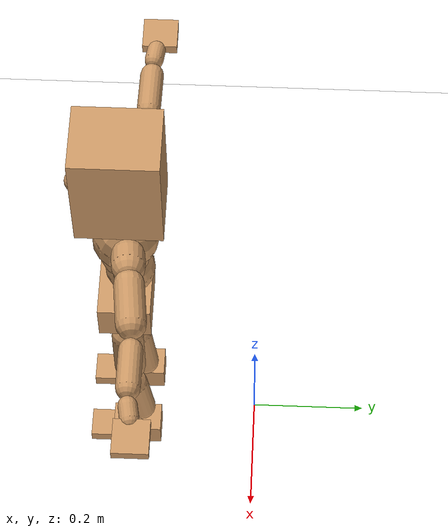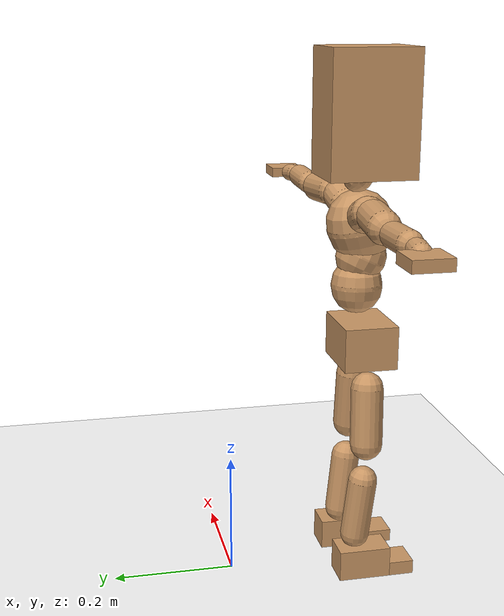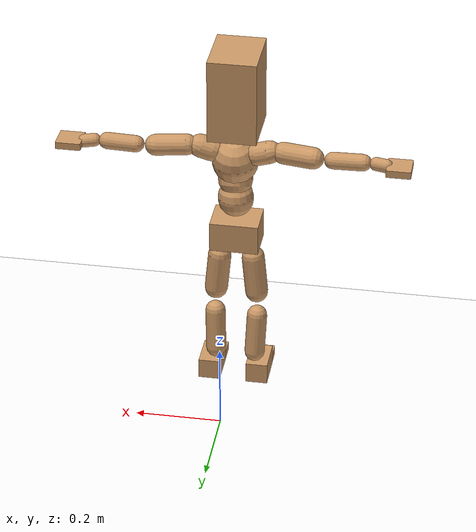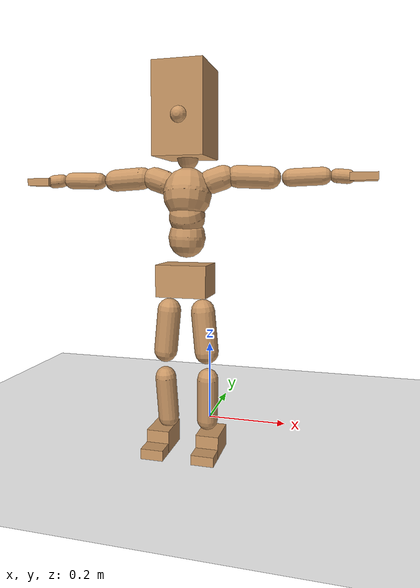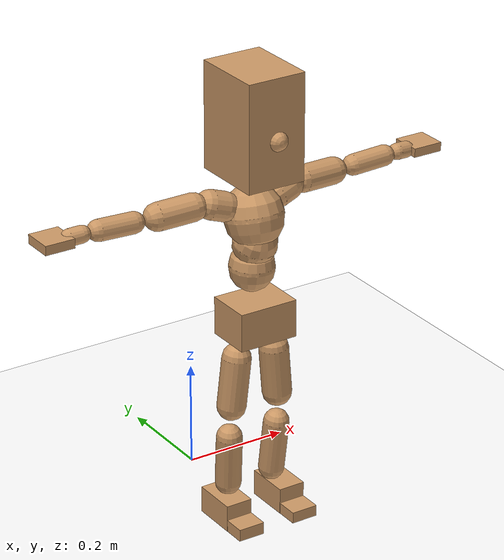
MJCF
<mujoco model="humanoid">
  <option integrator="implicitfast" />

  <visual>
    <global offwidth="1280" offheight="960" />
    <headlight active="1" ambient="0.34 0.34 0.34" diffuse="0.5 0.5 0.5" />
  </visual>

  <default>
    <joint damping="2" stiffness="2" armature="0.01" limited="true" solimplimit="0 .99 .01" />
    <geom condim="1" friction="0.7 0.005 0.0001" solimp=".99 .99 .003" solref="0.015 1" margin="0.001" rgba="0.8 0.6 .4 1" />
    <default class="smplcontact">
      <geom condim="3" friction="1. 0.005 0.0001" solref="0.015 1" solimp="0.98 0.98 0.001" priority="1" />
    </default>
    <default class="stiff_medium">
      <joint stiffness="10" />
    </default>
    <default class="stiff_medium_higher">
      <joint stiffness="50" />
    </default>
    <default class="stiff_high">
      <joint stiffness="100" />
    </default>
  </default>

  <asset>
    <texture type="skybox" builtin="gradient" rgb1="0.99 0.99 0.99" rgb2="0.608 0.828 0.892" width="100" />
    <texture builtin="flat" height="1278" mark="cross" markrgb="1 1 1" name="texgeom" random="0.01" rgb1="0.8 0.6 0.4" rgb2="0.8 0.6 0.4" type="cube" width="127" />
    <texture name="texplane" type="2d" builtin="checker" markrgb="1 1 1" rgb1="0.756 0.772 0.76" rgb2="0.6 0.6 0.6" width="100" height="100" />
    <material name="MatPlane" reflectance="0.5" texture="texplane" texrepeat="1 1" texuniform="true" />
    <material name="geom" texture="texgeom" texuniform="true" />
  </asset>

  <worldbody>
    <light name="tracking_light" pos="0 0 7" dir="0 0 -1" directional="true" cutoff="100" exponent="1" diffuse="1 1 1" specular="0.1 0.1 0.1" mode="trackcom" />
    <camera name="back" pos="0 3 2.4" xyaxes="-1 0 0 0 -1 2" mode="trackcom" />
    <camera name="side" pos="-3 0 2.4" xyaxes="0 -1 0 1 0 2" mode="trackcom" />
    <camera name="front_side" pos="-2.8 -2.8 0.8" xyaxes="0.5 -0.5 0 0.1 0.1 1" mode="trackcom" />
    <geom condim="3" name="floor" pos="0 0 0" rgba="1 1 1 1" size="100 100 .2" type="plane" material="MatPlane" />
    <body name="Pelvis" pos="-0.0018 -0.2233 0.402403" euler="90 0 0">
      <site name="Pelvis" size="0.01" />
      <freejoint name="Pelvis" />
      <geom type="box" pos="0 -0.00602459 -0.0029414" size="0.0571701 0.0359484 0.0443884" quat="1.0000 0.0000 0.0000 0.0000" density="3165.830099" name="Pelvis" />
      <body name="L_Hip" pos="0.0371686 -0.0455081 -0.00363664">
        <joint name="L_Hip_x" type="hinge" pos="0 0 0" axis="1 0 0" stiffness="0.3677748979591837" range="-160.0 22.92" class="stiff_medium" damping="0.37491331306998665" armature="0.00016986234798283648"/>
        <joint name="L_Hip_y" type="hinge" pos="0 0 0" axis="0 1 0" stiffness="0.38561333333333336" range="-70.0 70.0" class="stiff_medium" damping="0.27199011934946754" armature="0.0001918466469617344"/>
        <joint name="L_Hip_z" type="hinge" pos="0 0 0" axis="0 0 1" stiffness="0.38127510204081627" range="-28.65 90.0" class="stiff_medium" damping="0.2543517976522173" armature="0.00016968020367086225"/>
        <geom type="capsule" density="2040.816327" fromto="0.00285122 -0.0309673 -0.000371632 0.0113157 -0.123952 -0.00148646" size="0.0272814" name="L_Hip" />
        <body name="L_Knee" pos="0.0141669 -0.15492 -0.00185809">
          <joint name="L_Knee_x" type="hinge" pos="0 0 0" axis="1 0 0" range="-5.16 171.89" damping="0.22297770555726118" armature="0.0001962826443756733" stiffness="0.07915730612244898"/>
          <joint name="L_Knee_y" type="hinge" pos="0 0 0" axis="0 1 0" range="-4.58 6.88" damping="0.2358951287367411" armature="0.00024222787645962438" stiffness="0.07178998214285714"/>
          <joint name="L_Knee_z" type="hinge" pos="0 0 0" axis="0 0 1" range="-6.88 4.58" damping="0.23016580390690033" armature="0.00019511860256288564" stiffness="0.08484630724637682"/>
          <geom type="capsule" density="1234.567901" fromto="-0.00111382 -0.0328671 -0.00359021 -0.0044996 -0.131468 -0.0144495" size="0.0239988" name="L_Knee" />
          <body name="L_Ankle" pos="-0.00561341 -0.164335 -0.0180397">
            <joint name="L_Ankle_x" type="hinge" pos="0 0 0" axis="1 0 0" range="-45.84 45.84" class="stiff_medium" damping="0.3082937562143534" armature="0.0003672281061202325" stiffness="0.7189373469387755"/>
            <joint name="L_Ankle_y" type="hinge" pos="0 0 0" axis="0 1 0" range="-74.48 22.92" class="stiff_medium" damping="0.15577719327276413" armature="0.00036653591128919273" stiffness="0.735611836734694"/>
            <joint name="L_Ankle_z" type="hinge" pos="0 0 0" axis="0 0 1" range="-4.58 4.58" class="stiff_medium" damping="0.33580714543916057" armature="0.00040933702998049564" stiffness="0.7652376530612246"/>
            <geom type="box" pos="0.0124608 -0.0127817 0.0121097" size="0.0258308 0.0248147 0.042534" quat="1.0000 0.0000 0.0000 0.0000" density="449.071558" name="L_Ankle" class="smplcontact" />
            <body name="L_Toe" pos="0.0141187 -0.0298418 0.0596977">
              <joint name="L_Toe_x" type="hinge" pos="0 0 0" axis="1 0 0" range="-91.67 22.92" armature="0.00036396280409048653" damping="0.10217521170199326" stiffness="0.14341814285714286"/>
              <joint name="L_Toe_y" type="hinge" pos="0 0 0" axis="0 1 0" range="-4.58 4.58" armature="0.0003767336280226816" damping="0.10435413440400794" stiffness="0.14452897959183675"/>
              <joint name="L_Toe_z" type="hinge" pos="0 0 0" axis="0 0 1" range="-4.58 4.58" armature="0.0004093375005717851" damping="0.11194801822723745" stiffness="0.153081"/>
              <geom type="box" pos="-0.0016044 0.0029414 0.0124099" size="0.0255634 0.010696 0.0248198" quat="1.0000 0.0000 0.0000 0.0000" density="423.206892" name="L_Toe" class="smplcontact" />
            </body>
          </body>
        </body>
      </body>
      <body name="R_Hip" pos="-0.036206 -0.04506 -0.00229964">
        <joint name="R_Hip_x" type="hinge" pos="0 0 0" axis="1 0 0" stiffness="0.3677748979591837" range="-160.0 22.92" class="stiff_medium" damping="0.37491331306998665" armature="0.00016986234798283648"/>
        <joint name="R_Hip_y" type="hinge" pos="0 0 0" axis="0 1 0" stiffness="0.38561333333333336" range="-70.0 70.0" class="stiff_medium" damping="0.27199011934946754" armature="0.0001918466469617344"/>
        <joint name="R_Hip_z" type="hinge" pos="0 0 0" axis="0 0 1" stiffness="0.38127510204081627" range="-90.0 28.65" class="stiff_medium" damping="0.2543517976522173" armature="0.00016968020367086225"/>
        <geom type="capsule" density="2040.816327" fromto="-0.00318146 -0.0315866 -0.000744262 -0.0126369 -0.126388 -0.00293263" size="0.0268822" name="R_Hip" />
        <body name="R_Knee" pos="-0.0158183 -0.157975 -0.00367689">
          <joint name="R_Knee_x" type="hinge" pos="0 0 0" axis="1 0 0" range="-5.16 171.89" damping="0.22297770555726118" armature="0.0001962826443756733" stiffness="0.07915730612244898"/>
          <joint name="R_Knee_y" type="hinge" pos="0 0 0" axis="0 1 0" range="-6.88 4.58" damping="0.2358951287367411" armature="0.00024222787645962438" stiffness="0.07178998214285714"/>
          <joint name="R_Knee_z" type="hinge" pos="0 0 0" axis="0 0 1" range="-4.58 6.88" damping="0.23016580390690033" armature="0.00019511860256288564" stiffness="0.08484630724637682"/>
          <geom type="capsule" density="1234.567901" fromto="0.00132328 -0.0329078 -0.00351156 0.00520454 -0.131591 -0.0139579" size="0.0239988" name="R_Knee" />
          <body name="R_Ankle" pos="0.00652781 -0.164499 -0.0174695">
            <joint name="R_Ankle_x" type="hinge" pos="0 0 0" axis="1 0 0" range="-45.84 45.84" class="stiff_medium" damping="0.3082937562143534" armature="0.0003672281061202325" stiffness="0.7189373469387755"/>
            <joint name="R_Ankle_y" type="hinge" pos="0 0 0" axis="0 1 0" range="-22.92 74.48" class="stiff_medium" damping="0.15577719327276413" armature="0.00036653591128919273" stiffness="0.735611836734694"/>
            <joint name="R_Ankle_z" type="hinge" pos="0 0 0" axis="0 0 1" range="-4.58 4.58" class="stiff_medium" damping="0.33580714543916057" armature="0.00040933702998049564" stiffness="0.7652376530612246"/>
            <geom type="box" pos="-0.0113378 -0.00930552 0.0128102" size="0.0258308 0.0255634 0.0432846" quat="1.0000 0.0000 0.0000 0.0000" density="434.700981" name="R_Ankle" class="smplcontact" />
            <body name="R_Toe" pos="-0.0135839 -0.0257239 0.0616993">
              <joint name="R_Toe_x" type="hinge" pos="0 0 0" axis="1 0 0" range="-91.67 22.92" armature="0.00036396280409048653" damping="0.10217521170199326" stiffness="0.14341814285714286"/>
              <joint name="R_Toe_y" type="hinge" pos="0 0 0" axis="0 1 0" range="-4.58 4.58" armature="0.0003767336280226816" damping="0.10435413440400794" stiffness="0.14452897959183675"/>
              <joint name="R_Toe_z" type="hinge" pos="0 0 0" axis="0 0 1" range="-4.58 4.58" armature="0.0004093375005717851" damping="0.11194801822723745" stiffness="0.153081"/>
              <geom type="box" pos="0.00224616 0.0024066 0.0113591" size="0.0256169 0.0115517 0.0246697" quat="1.0000 0.0000 0.0000 0.0000" density="407.384095" name="R_Toe" class="smplcontact" />
            </body>
          </body>
        </body>
      </body>
      <body name="Torso" pos="-0.001337 0.0542711 -0.0142792">
        <joint name="Torso_x" type="hinge" pos="0 0 0" axis="1 0 0" range="-25.78 57.3" class="stiff_medium" damping="2.1825614929527895" armature="0.0011955666764354703" stiffness="1.7708291304347825"/>
        <joint name="Torso_y" type="hinge" pos="0 0 0" axis="0 1 0" range="-57.3 57.3" class="stiff_high" damping="1.5052226665062327" armature="0.000309461059683733" stiffness="18.303557142857144"/>
        <joint name="Torso_z" type="hinge" pos="0 0 0" axis="0 0 1" range="-34.38 34.38" class="stiff_high" damping="2.4335813002643425" armature="0.0008873872509426525" stiffness="16.684705405405406"/>
        <geom type="capsule" density="2040.816327" fromto="0.00127129 0.0306915 0.000254258 0.00152369 0.0375063 0.000304738" size="0.0417029" name="Torso" />
        <body name="Spine" pos="0.00279485 0.0682482 0.000558969">
          <joint name="Spine_x" type="hinge" pos="0 0 0" axis="1 0 0" stiffness="1.9280622916666668" range="-25.78 57.3" class="stiff_medium" damping="2.6413545967464116" armature="0.001608236215167443"/>
          <joint name="Spine_y" type="hinge" pos="0 0 0" axis="0 1 0" stiffness="2.301758620689655" range="-57.3 57.3" class="stiff_high" damping="0.6740117984523157" armature="0.00030838641998656447"/>
          <joint name="Spine_z" type="hinge" pos="0 0 0" axis="0 0 1" stiffness="4.1059620512820505" range="-34.38 34.38" class="stiff_high" damping="1.6197521615010917" armature="0.0008874618826367728"/>
          <geom type="capsule" density="2040.816327" fromto="0.000362845 0.0120182 0.00574632 0.000413325 0.0146936 0.0070588" size="0.0409436" name="Spine" />
          <body name="Chest" pos="0.000776169 0.0267118 0.0128051">
            <joint name="Chest_x" type="hinge" pos="0 0 0" axis="1 0 0" stiffness="2.2754483333333333" range="-25.78 57.3" class="stiff_medium" damping="3.077686117594897" armature="0.001850116831859773"/>
            <joint name="Chest_y" type="hinge" pos="0 0 0" axis="0 1 0" stiffness="2.292672222222222" range="-57.3 57.3" class="stiff_high" damping="0.6719934326781651" armature="0.00030775712369718176"/>
            <joint name="Chest_z" type="hinge" pos="0 0 0" axis="0 0 1" stiffness="4.87682972972973" range="-34.38 34.38" class="stiff_high" damping="1.734495742448778" armature="0.0008567939417671608"/>
            <geom type="capsule" density="2040.816327" fromto="-0.000471151 0.0344301 -0.00872195 -0.000521631 0.0420526 -0.0106907" size="0.0543385" name="Chest" />
            <body name="Neck" pos="-0.00146606 0.108088 -0.0212218">
              <joint name="Neck_x" type="hinge" pos="0 0 0" axis="1 0 0" range="-28.65 57.3" class="stiff_medium_higher" damping="4.1299475131038585" armature="0.004023314113025205" stiffness="21.197035555555555"/>
              <joint name="Neck_y" type="hinge" pos="0 0 0" axis="0 1 0" range="-40.11 40.11" class="stiff_medium_higher" damping="4.167915015262487" armature="0.004459552574933254" stiffness="19.476747142857146"/>
              <joint name="Neck_z" type="hinge" pos="0 0 0" axis="0 0 1" range="-40.11 40.11" class="stiff_medium_higher" damping="4.727445548644317" armature="0.004140774710220232" stiffness="26.986183720930228"/>
              <geom type="capsule" density="1000" fromto="0.000499121 0.00650466 0.00515493 0.00205036 0.0260203 0.0205673" size="0.023435" name="Neck" />
              <body name="Head" pos="0.00260336 0.0325265 0.0256697">
                <joint name="Head_x" type="hinge" pos="0 0 0" axis="1 0 0" range="-28.65 57.3" class="stiff_medium_higher" damping="1.2263755231364017" armature="0.00575771691304177" stiffness="32.651764285714286"/>
                <joint name="Head_y" type="hinge" pos="0 0 0" axis="0 1 0" range="-40.11 40.11" class="stiff_medium_higher" damping="1.321652214058358" armature="0.006499901111254678" stiffness="33.5921375"/>
                <joint name="Head_z" type="hinge" pos="0 0 0" axis="0 0 1" range="-40.11 40.11" class="stiff_medium_higher" damping="1.2242626152853198" armature="0.005712248576418656" stiffness="32.79835714285714"/>
                <geom type="box" pos="-0.00390894 0.0758879 -0.0107961" size="0.0564004 0.099971 0.0707332" quat="1.0000 0.0000 0.0000 0.0000" density="1018.069894" name="Head" />
                <geom type="capsule" name="nose" size="0.018614 0.009307" pos="0 0.060641 0.046535" quat="1 0 0 0" mass="0" contype="0" conaffinity="0" />
              </body>
            </body>
            <body name="L_Thorax" pos="0.0427635 0.0614285 -0.0173122">
              <joint name="L_Thorax_x" type="hinge" pos="0 0 0" axis="1 0 0" range="-10.89 4.58" class="stiff_medium_higher" damping="0.7406219306554" armature="0.0002734892394056669" stiffness="2.5070494791666667"/>
              <joint name="L_Thorax_y" type="hinge" pos="0 0 0" axis="0 1 0" range="-28.65 17.19" class="stiff_medium_higher" damping="0.7053723687170143" armature="0.00023680995229915966" stiffness="2.6263158163265308"/>
              <joint name="L_Thorax_z" type="hinge" pos="0 0 0" axis="0 0 1" range="-31.51 40.11" class="stiff_medium_higher" damping="0.7032905709651358" armature="0.00023694498502748918" stiffness="2.609348469387755"/>
              <geom type="capsule" density="1000" fromto="0.00893609 0.00299506 -0.000885006 0.0357447 0.0119804 -0.00348731" size="0.0274828" name="L_Thorax" />
              <body name="L_Shoulder" pos="0.0446808 0.0149754 -0.00437231">
                <joint name="L_Shoulder_x" type="hinge" pos="0 0 0" axis="1 0 0" range="-97.4 97.4" class="stiff_medium" damping="0.21061709347312874" armature="0.0002462560519030261" stiffness="0.5003775510204083"/>
                <joint name="L_Shoulder_y" type="hinge" pos="0 0 0" axis="0 1 0" range="-108.86 80.21" class="stiff_medium" damping="0.2019473201717738" armature="0.00022971732591280805" stiffness="0.4931510204081632"/>
                <joint name="L_Shoulder_z" type="hinge" pos="0 0 0" axis="0 0 1" range="-97.4 85.94" class="stiff_medium" damping="0.20200603231333833" armature="0.00022962655848656437" stiffness="0.49363285714285715"/>
                <geom type="capsule" density="1000" fromto="0.0232874 -0.00116889 -0.00246795 0.0931949 -0.00457901 -0.0098715" size="0.0249194" name="L_Shoulder" />
                <body name="L_Elbow" pos="0.116482 -0.0057479 -0.0123395">
                  <joint name="L_Elbow_x" type="hinge" pos="0 0 0" axis="1 0 0" range="-17.19 4.58" damping="0.18679544931848754" armature="0.0002710976807905685" stiffness="0.10296669387755103"/>
                  <joint name="L_Elbow_y" type="hinge" pos="0 0 0" axis="0 1 0" range="-180.0 17.19" damping="0.17696681040017315" armature="0.0002433015331233604" stiffness="0.10297428571428573"/>
                  <joint name="L_Elbow_z" type="hinge" pos="0 0 0" axis="0 0 1" range="-100.84 4.58" damping="0.17701921830982972" armature="0.00024288520428848427" stiffness="0.10321189795918367"/>
                  <geom type="capsule" density="1000" fromto="0.0223453 0.00080774 -8.86404e-05 0.0894708 0.00323072 -0.00040273" size="0.019521" name="L_Elbow" />
                  <body name="L_Wrist" pos="0.111816 0.00403846 -0.000539571">
                    <joint name="L_Wrist_x" type="hinge" pos="0 0 0" axis="1 0 0" range="-180.0 22.92" armature="0.00032675344668133563" damping="0.08918573790113651" stiffness="0.12171403126356925"/>
                    <joint name="L_Wrist_y" type="hinge" pos="0 0 0" axis="0 1 0" range="-17.19 17.19" armature="0.00029750232538697344" damping="0.08417704912444428" stiffness="0.11908773469387755"/>
                    <joint name="L_Wrist_z" type="hinge" pos="0 0 0" axis="0 0 1" range="-22.92 22.92" armature="0.0002931730628109191" damping="0.08389537695384801" stiffness="0.12003889795918368"/>
                    <geom type="capsule" density="1000" fromto="0.00753826 -0.00071682 -0.00134612 0.0301527 -0.00291545 -0.00538442" size="0.0153276" name="L_Wrist" class="smplcontact" />
                    <body name="L_Hand" pos="0.0376913 -0.0036805 -0.00668238">
                      <joint name="L_Hand_x" type="hinge" pos="0 0 0" axis="1 0 0" range="-17.19 17.19" armature="0.00040729359764087633" damping="0.10808581049699166" stiffness="0.14341672074468087"/>
                      <joint name="L_Hand_y" type="hinge" pos="0 0 0" axis="0 1 0" range="-51.57 51.57" armature="0.0003656682910762087" damping="0.10197801309235983" stiffness="0.14219875510204083"/>
                      <joint name="L_Hand_z" type="hinge" pos="0 0 0" axis="0 0 1" range="-91.67 91.67" armature="0.00035439672076222506" damping="0.10026866585532955" stiffness="0.14184393877551021"/>
                      <geom type="box" pos="0.0245465 0.0005348 -0.00310184" size="0.0291272 0.00844984 0.0287722" quat="1.0000 0.0000 0.0000 0.0000" density="400.552564" name="L_Hand" class="smplcontact" />
                    </body>
                  </body>
                </body>
              </body>
            </body>
            <body name="R_Thorax" pos="-0.04433 0.0598795 -0.0197587">
              <joint name="R_Thorax_x" type="hinge" pos="0 0 0" axis="1 0 0" range="-10.89 4.58" class="stiff_medium_higher" damping="0.7406219306554" armature="0.0002734892394056669" stiffness="2.5070494791666667"/>
              <joint name="R_Thorax_y" type="hinge" pos="0 0 0" axis="0 1 0" range="-17.19 28.65" class="stiff_medium_higher" damping="0.7053723687170143" armature="0.00023680995229915966" stiffness="2.6263158163265308"/>
              <joint name="R_Thorax_z" type="hinge" pos="0 0 0" axis="0 0 1" range="-40.11 31.51" class="stiff_medium_higher" damping="0.7032905709651358" armature="0.00023694498502748918" stiffness="2.609348469387755"/>
              <geom type="capsule" density="1000" fromto="-0.0094273 0.00319153 -0.000882593 -0.0377089 0.012766 -0.00358309" size="0.0269552" name="R_Thorax" />
              <body name="R_Shoulder" pos="-0.0471351 0.0160099 -0.00446558">
                <joint name="R_Shoulder_x" type="hinge" pos="0 0 0" axis="1 0 0" range="-97.4 97.4" class="stiff_medium" damping="0.21061709347312874" armature="0.0002462560519030261" stiffness="0.5003775510204083"/>
                <joint name="R_Shoulder_y" type="hinge" pos="0 0 0" axis="0 1 0" range="-80.21 108.86" class="stiff_medium" damping="0.2019473201717738" armature="0.00022971732591280805" stiffness="0.4931510204081632"/>
                <joint name="R_Shoulder_z" type="hinge" pos="0 0 0" axis="0 0 1" range="-85.94 97.4" class="stiff_medium" damping="0.20200603231333833" armature="0.00022962655848656437" stiffness="0.49363285714285715"/>
                <geom type="capsule" density="1000" fromto="-0.0227489 -0.00121271 -0.00193069 -0.0910859 -0.00480231 -0.00767405" size="0.0255942" name="R_Shoulder" />
                <body name="R_Elbow" pos="-0.113835 -0.00596682 -0.00960476">
                  <joint name="R_Elbow_x" type="hinge" pos="0 0 0" axis="1 0 0" range="-17.19 4.58" damping="0.18679544931848754" armature="0.0002710976807905685" stiffness="0.10296669387755103"/>
                  <joint name="R_Elbow_y" type="hinge" pos="0 0 0" axis="0 1 0" range="-17.19 180.0" damping="0.17696681040017315" armature="0.0002433015331233604" stiffness="0.10297428571428573"/>
                  <joint name="R_Elbow_z" type="hinge" pos="0 0 0" axis="0 0 1" range="-4.58 100.84" damping="0.17701921830982972" armature="0.00024288520428848427" stiffness="0.10321189795918367"/>
                  <geom type="capsule" density="1000" fromto="-0.0229285 0.000720071 -0.000493521 -0.0916245 0.00278409 -0.00197423" size="0.0196656" name="R_Elbow" />
                  <body name="R_Wrist" pos="-0.114553 0.00350416 -0.00251595">
                    <joint name="R_Wrist_x" type="hinge" pos="0 0 0" axis="1 0 0" range="-180.0 22.92" armature="0.00032675344668133563" damping="0.08918573790113651" stiffness="0.12171403126356925"/>
                    <joint name="R_Wrist_y" type="hinge" pos="0 0 0" axis="0 1 0" range="-17.19 17.19" armature="0.00029750232538697344" damping="0.08417704912444428" stiffness="0.11908773469387755"/>
                    <joint name="R_Wrist_z" type="hinge" pos="0 0 0" axis="0 0 1" range="-22.92 22.92" armature="0.0002931730628109191" damping="0.08389537695384801" stiffness="0.12003889795918368"/>
                    <geom type="capsule" density="1000" fromto="-0.00758295 -0.000537405 -0.000943506 -0.0303769 -0.0021976 -0.00372545" size="0.0157132" name="R_Wrist" class="smplcontact" />
                    <body name="R_Hand" pos="-0.0379603 -0.00273503 -0.0046208">
                      <joint name="R_Hand_x" type="hinge" pos="0 0 0" axis="1 0 0" range="-17.19 17.19" armature="0.00040729359764087633" damping="0.10808581049699166" stiffness="0.14341672074468087"/>
                      <joint name="R_Hand_y" type="hinge" pos="0 0 0" axis="0 1 0" range="-51.57 51.57" armature="0.0003656682910762087" damping="0.10197801309235983" stiffness="0.14219875510204083"/>
                      <joint name="R_Hand_z" type="hinge" pos="0 0 0" axis="0 0 1" range="-91.67 91.67" armature="0.00035439672076222506" damping="0.10026866585532955" stiffness="0.14184393877551021"/>
                      <geom type="box" pos="-0.023003 -0.00048132 -0.00422492" size="0.0283305 0.00877072 0.0292001" quat="1.0000 0.0000 0.0000 0.0000" density="403.679611" name="R_Hand" class="smplcontact" />
                    </body>
                  </body>
                </body>
              </body>
            </body>
          </body>
        </body>
      </body>
    </body>
  </worldbody>
  <actuator>
    <general name="L_Hip_x" joint="L_Hip_x" biastype="affine" gainprm="10.567278500399848" biasprm="-7.919104181253068 -6.619948163265306 -0.04998844174266489" ctrllimited="true" ctrlrange="-1 1" forcerange="-13.239896326530612 13.239896326530612" />
    <general name="L_Hip_y" joint="L_Hip_y" biastype="affine" gainprm="8.480080105883905" biasprm="0.0 -6.941040000000001 -0.05439802386989351" ctrllimited="true" ctrlrange="-1 1" forcerange="-13.882080000000002 13.882080000000002" />
    <general name="L_Hip_z" joint="L_Hip_z" biastype="affine" gainprm="7.106014110887915" biasprm="3.67428542522523 -6.862951836734694 -0.050870359530443464" ctrllimited="true" ctrlrange="-1 1" forcerange="-13.725903673469388 13.725903673469388" />
    <general name="L_Knee_x" joint="L_Knee_x" biastype="affine" gainprm="11.007199004249204" biasprm="10.365604574857214 -7.124157551020408 -0.055744426389315295" ctrllimited="true" ctrlrange="-1 1" forcerange="-14.248315102040817 14.248315102040817" />
    <general name="L_Knee_y" joint="L_Knee_y" biastype="affine" gainprm="0.6461574326363461" biasprm="0.1296825562882719 -6.461098392857143 -0.058973782184185274" ctrllimited="true" ctrlrange="-1 1" forcerange="-12.922196785714286 12.922196785714286" />
    <general name="L_Knee_z" joint="L_Knee_z" biastype="affine" gainprm="0.7636730142918451" biasprm="-0.1532677079294279 -7.6361676521739135 -0.057541450976725084" ctrllimited="true" ctrlrange="-1 1" forcerange="-15.272335304347827 15.272335304347827" />
    <general name="L_Ankle_x" joint="L_Ankle_x" biastype="affine" gainprm="5.176730195028372" biasprm="0.0 -6.47043612244898 -0.10276458540478448" ctrllimited="true" ctrlrange="-1 1" forcerange="-12.94087224489796 12.94087224489796" />
    <general name="L_Ankle_y" joint="L_Ankle_y" biastype="affine" gainprm="5.627267327206861" biasprm="-2.9788696446692584 -6.6205065306122455 -0.10385146218184275" ctrllimited="true" ctrlrange="-1 1" forcerange="-13.241013061224491 13.241013061224491" />
    <general name="L_Ankle_z" joint="L_Ankle_z" biastype="affine" gainprm="0.5505308825056032" biasprm="0.0 -6.8871388775510205 -0.11193571514638687" ctrllimited="true" ctrlrange="-1 1" forcerange="-13.774277755102041 13.774277755102041" />
    <general name="L_Toe_x" joint="L_Toe_x" biastype="affine" gainprm="5.1629828991585" biasprm="-3.0976095149415035 -5.163053142857143 -0.04087008468079731" ctrllimited="true" ctrlrange="-1 1" forcerange="-10.326106285714285 10.326106285714285" />
    <general name="L_Toe_y" joint="L_Toe_y" biastype="affine" gainprm="0.4159108813531538" biasprm="0.0 -5.203043265306123 -0.04174165376160318" ctrllimited="true" ctrlrange="-1 1" forcerange="-10.406086530612246 10.406086530612246" />
    <general name="L_Toe_z" joint="L_Toe_z" biastype="affine" gainprm="0.44052102082382805" biasprm="0.0 -5.510916 -0.04477920729089498" ctrllimited="true" ctrlrange="-1 1" forcerange="-11.021832 11.021832" />
    <general name="R_Hip_x" joint="R_Hip_x" biastype="affine" gainprm="10.567278500399848" biasprm="-7.919104181253068 -6.619948163265306 -0.04998844174266489" ctrllimited="true" ctrlrange="-1 1" forcerange="-13.239896326530612 13.239896326530612" />
    <general name="R_Hip_y" joint="R_Hip_y" biastype="affine" gainprm="8.480080105883905" biasprm="0.0 -6.941040000000001 -0.05439802386989351" ctrllimited="true" ctrlrange="-1 1" forcerange="-13.882080000000002 13.882080000000002" />
    <general name="R_Hip_z" joint="R_Hip_z" biastype="affine" gainprm="7.106014110887915" biasprm="-3.67428542522523 -6.862951836734694 -0.050870359530443464" ctrllimited="true" ctrlrange="-1 1" forcerange="-13.725903673469388 13.725903673469388" />
    <general name="R_Knee_x" joint="R_Knee_x" biastype="affine" gainprm="11.007199004249204" biasprm="10.365604574857214 -7.124157551020408 -0.055744426389315295" ctrllimited="true" ctrlrange="-1 1" forcerange="-14.248315102040817 14.248315102040817" />
    <general name="R_Knee_y" joint="R_Knee_y" biastype="affine" gainprm="0.6461574326363461" biasprm="-0.1296825562882719 -6.461098392857143 -0.058973782184185274" ctrllimited="true" ctrlrange="-1 1" forcerange="-12.922196785714286 12.922196785714286" />
    <general name="R_Knee_z" joint="R_Knee_z" biastype="affine" gainprm="0.7636730142918451" biasprm="0.1532677079294279 -7.6361676521739135 -0.057541450976725084" ctrllimited="true" ctrlrange="-1 1" forcerange="-15.272335304347827 15.272335304347827" />
    <general name="R_Ankle_x" joint="R_Ankle_x" biastype="affine" gainprm="5.176730195028372" biasprm="0.0 -6.47043612244898 -0.10276458540478448" ctrllimited="true" ctrlrange="-1 1" forcerange="-12.94087224489796 12.94087224489796" />
    <general name="R_Ankle_y" joint="R_Ankle_y" biastype="affine" gainprm="5.627267327206861" biasprm="2.9788696446692584 -6.6205065306122455 -0.10385146218184275" ctrllimited="true" ctrlrange="-1 1" forcerange="-13.241013061224491 13.241013061224491" />
    <general name="R_Ankle_z" joint="R_Ankle_z" biastype="affine" gainprm="0.5505308825056032" biasprm="0.0 -6.8871388775510205 -0.11193571514638687" ctrllimited="true" ctrlrange="-1 1" forcerange="-13.774277755102041 13.774277755102041" />
    <general name="R_Toe_x" joint="R_Toe_x" biastype="affine" gainprm="5.1629828991585" biasprm="-3.0976095149415035 -5.163053142857143 -0.04087008468079731" ctrllimited="true" ctrlrange="-1 1" forcerange="-10.326106285714285 10.326106285714285" />
    <general name="R_Toe_y" joint="R_Toe_y" biastype="affine" gainprm="0.4159108813531538" biasprm="0.0 -5.203043265306123 -0.04174165376160318" ctrllimited="true" ctrlrange="-1 1" forcerange="-10.406086530612246 10.406086530612246" />
    <general name="R_Toe_z" joint="R_Toe_z" biastype="affine" gainprm="0.44052102082382805" biasprm="0.0 -5.510916 -0.04477920729089498" ctrllimited="true" ctrlrange="-1 1" forcerange="-11.021832 11.021832" />
    <general name="Torso_x" joint="Torso_x" biastype="affine" gainprm="30.812842147913482" biasprm="11.690187584283013 -42.499899130434784 -0.5820163981207439" ctrllimited="true" ctrlrange="-1 1" forcerange="-63.749848695652176 63.749848695652176" />
    <general name="Torso_y" joint="Torso_y" biastype="affine" gainprm="43.931772980084595" biasprm="0.0 -43.928537142857145 -0.30104453330124653" ctrllimited="true" ctrlrange="-1 1" forcerange="-65.89280571428571 65.89280571428571" />
    <general name="Torso_z" joint="Torso_z" biastype="affine" gainprm="24.02774557062222" biasprm="0.0 -40.04329297297298 -0.4867162600528685" ctrllimited="true" ctrlrange="-1 1" forcerange="-60.06493945945946 60.06493945945946" />
    <general name="Spine_x" joint="Spine_x" biastype="affine" gainprm="33.548736026204246" biasprm="12.7281675438849 -46.273495000000004 -0.7043612257990431" ctrllimited="true" ctrlrange="-1 1" forcerange="-69.41024250000001 69.41024250000001" />
    <general name="Spine_y" joint="Spine_y" biastype="affine" gainprm="55.24627611445035" biasprm="0.0 -55.24220689655173 -0.33700589922615787" ctrllimited="true" ctrlrange="-1 1" forcerange="-82.8633103448276 82.8633103448276" />
    <general name="Spine_z" joint="Spine_z" biastype="affine" gainprm="29.56510441559038" biasprm="0.0 -49.271544615384606 -0.5399173871670305" ctrllimited="true" ctrlrange="-1 1" forcerange="-73.9073169230769 73.9073169230769" />
    <general name="Chest_x" joint="Chest_x" biastype="affine" gainprm="39.59333461694202" biasprm="15.02144808769875 -54.61075999999999 -0.8207162980253059" ctrllimited="true" ctrlrange="-1 1" forcerange="-81.91613999999998 81.91613999999998" />
    <general name="Chest_y" joint="Chest_y" biastype="affine" gainprm="55.02818648762957" biasprm="0.0 -55.02413333333333 -0.33599671633908257" ctrllimited="true" ctrlrange="-1 1" forcerange="-82.5362 82.5362" />
    <general name="Chest_z" joint="Chest_z" biastype="affine" gainprm="35.11576053935878" biasprm="0.0 -58.52195675675676 -0.578165247482926" ctrllimited="true" ctrlrange="-1 1" forcerange="-87.78293513513513 87.78293513513513" />
    <general name="Neck_x" joint="Neck_x" biastype="affine" gainprm="11.447242357707053" biasprm="3.815747452569018 -15.2618656 -0.3303958010483087" ctrllimited="true" ctrlrange="-1 1" forcerange="-30.5237312 30.5237312" />
    <general name="Neck_y" joint="Neck_y" biastype="affine" gainprm="9.817003640897683" biasprm="0.0 -14.023257942857144 -0.33343320122099895" ctrllimited="true" ctrlrange="-1 1" forcerange="-28.04651588571429 28.04651588571429" />
    <general name="Neck_z" joint="Neck_z" biastype="affine" gainprm="13.602038466647302" biasprm="0.0 -19.430052279069766 -0.37819564389154536" ctrllimited="true" ctrlrange="-1 1" forcerange="-38.86010455813953 38.86010455813953" />
    <general name="Head_x" joint="Head_x" biastype="affine" gainprm="11.755501005653043" biasprm="3.918500335217681 -15.672846857142858 -0.4905502092545607" ctrllimited="true" ctrlrange="-1 1" forcerange="-31.345693714285716 31.345693714285716" />
    <general name="Head_y" joint="Head_y" biastype="affine" gainprm="11.287789613060932" biasprm="0.0 -16.124226 -0.5286608856233432" ctrllimited="true" ctrlrange="-1 1" forcerange="-32.248452 32.248452" />
    <general name="Head_z" joint="Head_z" biastype="affine" gainprm="11.021059766816139" biasprm="0.0 -15.743211428571428 -0.4897050461141279" ctrllimited="true" ctrlrange="-1 1" forcerange="-31.486422857142855 31.486422857142855" />
    <general name="L_Thorax_x" joint="L_Thorax_x" biastype="affine" gainprm="0.8122913577015448" biasprm="-0.33132246070437943 -6.01691875 -0.059249754452432" ctrllimited="true" ctrlrange="-1 1" forcerange="-12.0338375 12.0338375" />
    <general name="L_Thorax_y" joint="L_Thorax_y" biastype="affine" gainprm="2.5214489034310703" biasprm="-0.6303622258577676 -6.303157959183674 -0.05642978949736114" ctrllimited="true" ctrlrange="-1 1" forcerange="-12.606315918367349 12.606315918367349" />
    <general name="L_Thorax_z" joint="L_Thorax_z" biastype="affine" gainprm="3.914037766112538" biasprm="0.469990572306169 -6.262436326530612 -0.05626324567721086" ctrllimited="true" ctrlrange="-1 1" forcerange="-12.524872653061225 12.524872653061225" />
    <general name="L_Shoulder_x" joint="L_Shoulder_x" biastype="affine" gainprm="4.082962386429295" biasprm="0.0 -2.4018122448979593 -0.056164558259501" ctrllimited="true" ctrlrange="-1 1" forcerange="-4.803624489795919 4.803624489795919" />
    <general name="L_Shoulder_y" joint="L_Shoulder_y" biastype="affine" gainprm="3.9056306438326174" biasprm="-0.5918248159189955 -2.3671248979591835 -0.053852618712473016" ctrllimited="true" ctrlrange="-1 1" forcerange="-4.734249795918367 4.734249795918367" />
    <general name="L_Shoulder_z" joint="L_Shoulder_z" biastype="affine" gainprm="3.7909660556931035" biasprm="-0.236961225036779 -2.369437714285714 -0.05386827528355689" ctrllimited="true" ctrlrange="-1 1" forcerange="-4.738875428571428 4.738875428571428" />
    <general name="L_Elbow_x" joint="L_Elbow_x" biastype="affine" gainprm="0.7042146735021623" biasprm="-0.407907534812231 -3.7068009795918373 -0.02988727189095801" ctrllimited="true" ctrlrange="-1 1" forcerange="-7.413601959183675 7.413601959183675" />
    <general name="L_Elbow_y" joint="L_Elbow_y" biastype="affine" gainprm="6.379160774251195" biasprm="-5.2669565680604356 -3.707074285714286 -0.028314689664027705" ctrllimited="true" ctrlrange="-1 1" forcerange="-7.414148571428572 7.414148571428572" />
    <general name="L_Elbow_z" joint="L_Elbow_z" biastype="affine" gainprm="3.4182407632085714" biasprm="-3.1212280010098383 -3.715628326530612 -0.028323074929572756" ctrllimited="true" ctrlrange="-1 1" forcerange="-7.431256653061224 7.431256653061224" />
    <general name="L_Wrist_x" joint="L_Wrist_x" biastype="affine" gainprm="1.293195315635638" biasprm="-1.0010601231029272 -0.7302841875814154 -0.03567429516045461" ctrllimited="true" ctrlrange="-1 1" forcerange="-1.460568375162831 1.460568375162831" />
    <general name="L_Wrist_y" joint="L_Wrist_y" biastype="affine" gainprm="0.2143737123520944" biasprm="0.0 -0.7145264081632653 -0.033670819649777715" ctrllimited="true" ctrlrange="-1 1" forcerange="-1.4290528163265306 1.4290528163265306" />
    <general name="L_Wrist_z" joint="L_Wrist_z" biastype="affine" gainprm="0.28811457645981997" biasprm="0.0 -0.7202333877551022 -0.0335581507815392" ctrllimited="true" ctrlrange="-1 1" forcerange="-1.4404667755102043 1.4404667755102043" />
    <general name="L_Hand_x" joint="L_Hand_x" biastype="affine" gainprm="0.2581691130361345" biasprm="0.0 -0.8605003244680852 -0.043234324198796664" ctrllimited="true" ctrlrange="-1 1" forcerange="-1.7210006489361704 1.7210006489361704" />
    <general name="L_Hand_y" joint="L_Hand_y" biastype="affine" gainprm="0.767929840166101" biasprm="0.0 -0.853192530612245 -0.040791205236943934" ctrllimited="true" ctrlrange="-1 1" forcerange="-1.70638506122449 1.70638506122449" />
    <general name="L_Hand_z" joint="L_Hand_z" biastype="affine" gainprm="1.3616535784715615" biasprm="0.0 -0.8510636326530613 -0.040107466342131824" ctrllimited="true" ctrlrange="-1 1" forcerange="-1.7021272653061226 1.7021272653061226" />
    <general name="R_Thorax_x" joint="R_Thorax_x" biastype="affine" gainprm="0.8122913577015448" biasprm="-0.33132246070437943 -6.01691875 -0.059249754452432" ctrllimited="true" ctrlrange="-1 1" forcerange="-12.0338375 12.0338375" />
    <general name="R_Thorax_y" joint="R_Thorax_y" biastype="affine" gainprm="2.5214489034310703" biasprm="0.6303622258577672 -6.303157959183674 -0.05642978949736114" ctrllimited="true" ctrlrange="-1 1" forcerange="-12.606315918367349 12.606315918367349" />
    <general name="R_Thorax_z" joint="R_Thorax_z" biastype="affine" gainprm="3.914037766112538" biasprm="-0.469990572306169 -6.262436326530612 -0.05626324567721086" ctrllimited="true" ctrlrange="-1 1" forcerange="-12.524872653061225 12.524872653061225" />
    <general name="R_Shoulder_x" joint="R_Shoulder_x" biastype="affine" gainprm="4.082962386429295" biasprm="0.0 -2.4018122448979593 -0.056164558259501" ctrllimited="true" ctrlrange="-1 1" forcerange="-4.803624489795919 4.803624489795919" />
    <general name="R_Shoulder_y" joint="R_Shoulder_y" biastype="affine" gainprm="3.9056306438326174" biasprm="0.5918248159189955 -2.3671248979591835 -0.053852618712473016" ctrllimited="true" ctrlrange="-1 1" forcerange="-4.734249795918367 4.734249795918367" />
    <general name="R_Shoulder_z" joint="R_Shoulder_z" biastype="affine" gainprm="3.7909660556931035" biasprm="0.23696122503677847 -2.369437714285714 -0.05386827528355689" ctrllimited="true" ctrlrange="-1 1" forcerange="-4.738875428571428 4.738875428571428" />
    <general name="R_Elbow_x" joint="R_Elbow_x" biastype="affine" gainprm="0.7042146735021623" biasprm="-0.407907534812231 -3.7068009795918373 -0.02988727189095801" ctrllimited="true" ctrlrange="-1 1" forcerange="-7.413601959183675 7.413601959183675" />
    <general name="R_Elbow_y" joint="R_Elbow_y" biastype="affine" gainprm="6.379160774251195" biasprm="5.2669565680604356 -3.707074285714286 -0.028314689664027705" ctrllimited="true" ctrlrange="-1 1" forcerange="-7.414148571428572 7.414148571428572" />
    <general name="R_Elbow_z" joint="R_Elbow_z" biastype="affine" gainprm="3.4182407632085714" biasprm="3.121228001009838 -3.715628326530612 -0.028323074929572756" ctrllimited="true" ctrlrange="-1 1" forcerange="-7.431256653061224 7.431256653061224" />
    <general name="R_Wrist_x" joint="R_Wrist_x" biastype="affine" gainprm="1.293195315635638" biasprm="-1.0010601231029272 -0.7302841875814154 -0.03567429516045461" ctrllimited="true" ctrlrange="-1 1" forcerange="-1.460568375162831 1.460568375162831" />
    <general name="R_Wrist_y" joint="R_Wrist_y" biastype="affine" gainprm="0.2143737123520944" biasprm="0.0 -0.7145264081632653 -0.033670819649777715" ctrllimited="true" ctrlrange="-1 1" forcerange="-1.4290528163265306 1.4290528163265306" />
    <general name="R_Wrist_z" joint="R_Wrist_z" biastype="affine" gainprm="0.28811457645981997" biasprm="0.0 -0.7202333877551022 -0.0335581507815392" ctrllimited="true" ctrlrange="-1 1" forcerange="-1.4404667755102043 1.4404667755102043" />
    <general name="R_Hand_x" joint="R_Hand_x" biastype="affine" gainprm="0.2581691130361345" biasprm="0.0 -0.8605003244680852 -0.043234324198796664" ctrllimited="true" ctrlrange="-1 1" forcerange="-1.7210006489361704 1.7210006489361704" />
    <general name="R_Hand_y" joint="R_Hand_y" biastype="affine" gainprm="0.767929840166101" biasprm="0.0 -0.853192530612245 -0.040791205236943934" ctrllimited="true" ctrlrange="-1 1" forcerange="-1.70638506122449 1.70638506122449" />
    <general name="R_Hand_z" joint="R_Hand_z" biastype="affine" gainprm="1.3616535784715615" biasprm="0.0 -0.8510636326530613 -0.040107466342131824" ctrllimited="true" ctrlrange="-1 1" forcerange="-1.7021272653061226 1.7021272653061226" />
  </actuator>
  <contact>
    <exclude body1="Torso" body2="Chest" />
    <exclude body1="Head" body2="Chest" />
    <exclude body1="R_Knee" body2="R_Toe" />
    <exclude body1="R_Knee" body2="L_Ankle" />
    <exclude body1="R_Knee" body2="L_Toe" />
    <exclude body1="L_Knee" body2="L_Toe" />
    <exclude body1="L_Knee" body2="R_Ankle" />
    <exclude body1="L_Knee" body2="R_Toe" />
    <exclude body1="L_Shoulder" body2="Chest" />
    <exclude body1="R_Shoulder" body2="Chest" />
  </contact>
  <sensor>
    <framelinvel name="sensor_Pelvis_framelinvel" objtype="xbody" objname="Pelvis" />
    <framelinvel name="sensor_L_Hip_framelinvel" objtype="xbody" objname="L_Hip" />
    <framelinvel name="sensor_L_Knee_framelinvel" objtype="xbody" objname="L_Knee" />
    <framelinvel name="sensor_L_Ankle_framelinvel" objtype="xbody" objname="L_Ankle" />
    <framelinvel name="sensor_L_Toe_framelinvel" objtype="xbody" objname="L_Toe" />
    <framelinvel name="sensor_R_Hip_framelinvel" objtype="xbody" objname="R_Hip" />
    <framelinvel name="sensor_R_Knee_framelinvel" objtype="xbody" objname="R_Knee" />
    <framelinvel name="sensor_R_Ankle_framelinvel" objtype="xbody" objname="R_Ankle" />
    <framelinvel name="sensor_R_Toe_framelinvel" objtype="xbody" objname="R_Toe" />
    <framelinvel name="sensor_Torso_framelinvel" objtype="xbody" objname="Torso" />
    <framelinvel name="sensor_Spine_framelinvel" objtype="xbody" objname="Spine" />
    <framelinvel name="sensor_Chest_framelinvel" objtype="xbody" objname="Chest" />
    <framelinvel name="sensor_Neck_framelinvel" objtype="xbody" objname="Neck" />
    <framelinvel name="sensor_Head_framelinvel" objtype="xbody" objname="Head" />
    <framelinvel name="sensor_L_Thorax_framelinvel" objtype="xbody" objname="L_Thorax" />
    <framelinvel name="sensor_L_Shoulder_framelinvel" objtype="xbody" objname="L_Shoulder" />
    <framelinvel name="sensor_L_Elbow_framelinvel" objtype="xbody" objname="L_Elbow" />
    <framelinvel name="sensor_L_Wrist_framelinvel" objtype="xbody" objname="L_Wrist" />
    <framelinvel name="sensor_L_Hand_framelinvel" objtype="xbody" objname="L_Hand" />
    <framelinvel name="sensor_R_Thorax_framelinvel" objtype="xbody" objname="R_Thorax" />
    <framelinvel name="sensor_R_Shoulder_framelinvel" objtype="xbody" objname="R_Shoulder" />
    <framelinvel name="sensor_R_Elbow_framelinvel" objtype="xbody" objname="R_Elbow" />
    <framelinvel name="sensor_R_Wrist_framelinvel" objtype="xbody" objname="R_Wrist" />
    <framelinvel name="sensor_R_Hand_framelinvel" objtype="xbody" objname="R_Hand" />
    <frameangvel name="sensor_Pelvis_frameangvel" objtype="xbody" objname="Pelvis" />
    <frameangvel name="sensor_L_Hip_frameangvel" objtype="xbody" objname="L_Hip" />
    <frameangvel name="sensor_L_Knee_frameangvel" objtype="xbody" objname="L_Knee" />
    <frameangvel name="sensor_L_Ankle_frameangvel" objtype="xbody" objname="L_Ankle" />
    <frameangvel name="sensor_L_Toe_frameangvel" objtype="xbody" objname="L_Toe" />
    <frameangvel name="sensor_R_Hip_frameangvel" objtype="xbody" objname="R_Hip" />
    <frameangvel name="sensor_R_Knee_frameangvel" objtype="xbody" objname="R_Knee" />
    <frameangvel name="sensor_R_Ankle_frameangvel" objtype="xbody" objname="R_Ankle" />
    <frameangvel name="sensor_R_Toe_frameangvel" objtype="xbody" objname="R_Toe" />
    <frameangvel name="sensor_Torso_frameangvel" objtype="xbody" objname="Torso" />
    <frameangvel name="sensor_Spine_frameangvel" objtype="xbody" objname="Spine" />
    <frameangvel name="sensor_Chest_frameangvel" objtype="xbody" objname="Chest" />
    <frameangvel name="sensor_Neck_frameangvel" objtype="xbody" objname="Neck" />
    <frameangvel name="sensor_Head_frameangvel" objtype="xbody" objname="Head" />
    <frameangvel name="sensor_L_Thorax_frameangvel" objtype="xbody" objname="L_Thorax" />
    <frameangvel name="sensor_L_Shoulder_frameangvel" objtype="xbody" objname="L_Shoulder" />
    <frameangvel name="sensor_L_Elbow_frameangvel" objtype="xbody" objname="L_Elbow" />
    <frameangvel name="sensor_L_Wrist_frameangvel" objtype="xbody" objname="L_Wrist" />
    <frameangvel name="sensor_L_Hand_frameangvel" objtype="xbody" objname="L_Hand" />
    <frameangvel name="sensor_R_Thorax_frameangvel" objtype="xbody" objname="R_Thorax" />
    <frameangvel name="sensor_R_Shoulder_frameangvel" objtype="xbody" objname="R_Shoulder" />
    <frameangvel name="sensor_R_Elbow_frameangvel" objtype="xbody" objname="R_Elbow" />
    <frameangvel name="sensor_R_Wrist_frameangvel" objtype="xbody" objname="R_Wrist" />
    <frameangvel name="sensor_R_Hand_frameangvel" objtype="xbody" objname="R_Hand" />
    <subtreelinvel name="Chest_subtreelinvel" body="Chest" />
    <gyro name="Pelvis_gyro" site="Pelvis" />
  </sensor>
</mujoco>
